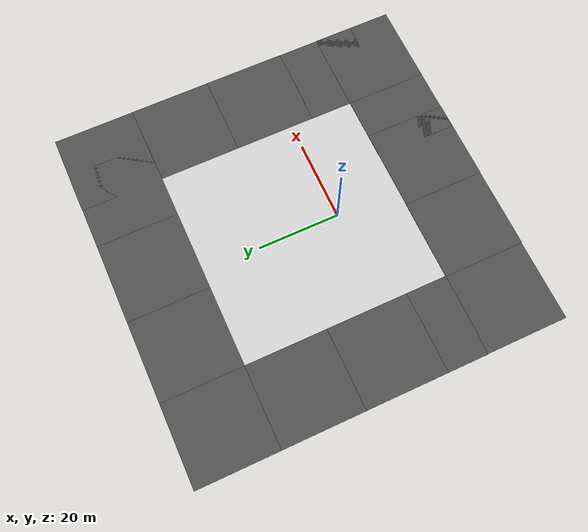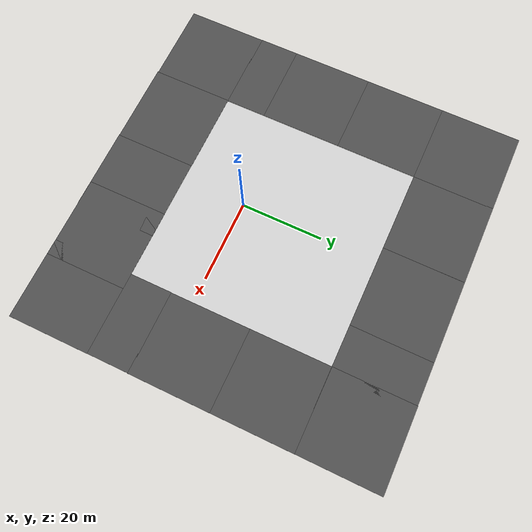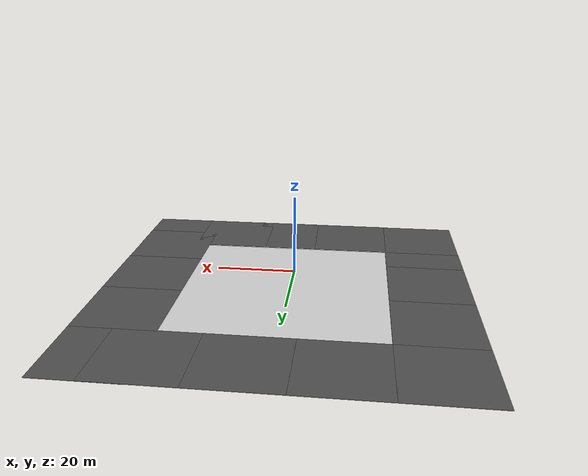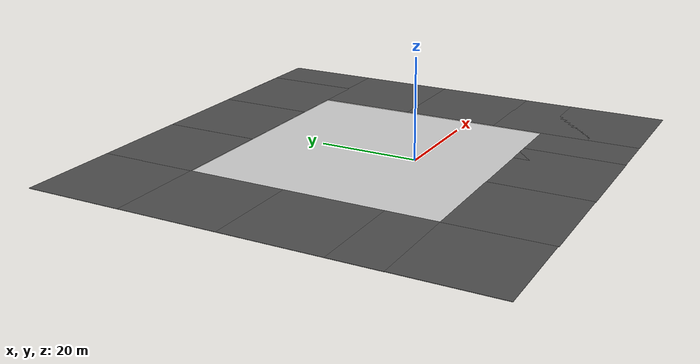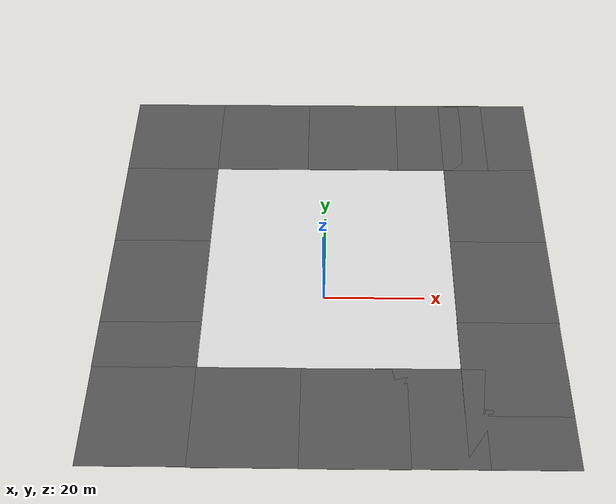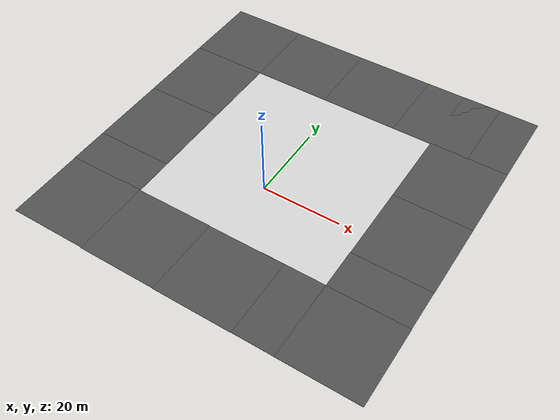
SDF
<sdf version="1.6">
 <world name="default">
  <light name="sun" type="directional">
   <pose>0 0 10 0 -0 0</pose>
   <diffuse>0.8 0.8 0.8 1</diffuse>
   <specular>0.1 0.1 0.1 1</specular>
   <attenuation>
    <range>1000</range>
    <constant>0.9</constant>
    <linear>0.01</linear>
    <quadratic>0.001</quadratic>
   </attenuation>
   <direction>-0.5 0.5 -1</direction>
  </light>
  <gravity>0 0 -9.8</gravity>
  <magnetic_field>6e-06 2.3e-05 -4.2e-05</magnetic_field>
  <atmosphere type="adiabatic"/>
  <physics name="default_physics" default="0" type="ode">
   <max_step_size>0.001</max_step_size>
   <real_time_factor>1</real_time_factor>
   <real_time_update_rate>1000</real_time_update_rate>
  </physics>
  <scene><ambient>0.4 0.4 0.4 1</ambient><background>0.7 0.7 0.7 1</background><shadows>1</shadows></scene>
  <spherical_coordinates>
   <surface_model>EARTH_WGS84</surface_model>
   <latitude_deg>0</latitude_deg>
   <longitude_deg>0</longitude_deg>
   <elevation>0</elevation>
   <heading_deg>0</heading_deg>
  </spherical_coordinates>
  <model name="my_ground_plane">
   <static>1</static>
   <link name="link">
    <collision name="collision">
     <geometry><plane><normal>0 0 1</normal><size>50 50</size></plane></geometry>
     <surface><friction><ode><mu>100</mu><mu2>50</mu2></ode></friction></surface>
    </collision>
    <visual name="visual">
     <cast_shadows>0</cast_shadows>
     <geometry><plane><normal>0 0 1</normal><size>50 50</size></plane></geometry>
     <material>
      <script>
       <uri>model://my_ground_plane/materials/scripts</uri>
       <uri>model://my_ground_plane/materials/textures/</uri>
       <name>MyGroundPlane/Image</name>
      </script>
     </material>
    </visual>
   </link>
   <pose>1.10135 9.06245 0 0 -0 0</pose>
  </model>
  <model name="asphalt_plane">
   <static>1</static>
   <link name="link">
    <collision name="collision"><geometry><box><size>20 20 0.1</size></box></geometry></collision>
    <visual name="visual">
     <cast_shadows>0</cast_shadows>
     <geometry><box><size>20 20 0.1</size></box></geometry>
     <material>
      <script>
       <uri>model://asphalt_plane/materials/scripts</uri>
       <uri>model://asphalt_plane/materials/textures</uri>
       <name>vrc/asphalt</name>
      </script>
     </material>
    </visual>
   </link>
   <pose>-33.9118 24.07 0 0 -0 0</pose>
  </model>
  <model name="asphalt_plane_0">
   <static>1</static>
   <link name="link">
    <collision name="collision"><geometry><box><size>20 20 0.1</size></box></geometry></collision>
    <visual name="visual">
     <cast_shadows>0</cast_shadows>
     <geometry><box><size>20 20 0.1</size></box></geometry>
     <material>
      <script>
       <uri>model://asphalt_plane/materials/scripts</uri>
       <uri>model://asphalt_plane/materials/textures</uri>
       <name>vrc/asphalt</name>
      </script>
     </material>
    </visual>
   </link>
   <pose>-33.9046 4.09898 0 0 -0 0</pose>
  </model>
  <model name="asphalt_plane_1_0">
   <link name="link">
    <pose>-0.001495 5.04324 0 0 -0 0</pose>
    <inertial>
     <inertia><ixx>nan</ixx><ixy>0</ixy><ixz>0</ixz><iyy>nan</iyy><iyz>0</iyz><izz>nan</izz></inertia>
     <mass>0</mass>
    </inertial>
    <visual name="visual">
     <cast_shadows>0</cast_shadows>
     <geometry><box><size>20 10.0921 0.1</size></box></geometry>
     <material>
      <script>
       <uri>model://asphalt_plane/materials/scripts</uri>
       <uri>model://asphalt_plane/materials/textures</uri>
       <name>vrc/asphalt</name>
      </script>
      <ambient>0.5 0.5 0.5 1</ambient>
      <diffuse>0.5 0.5 0.5 1</diffuse>
      <specular>0.2 0.2 0.2 1</specular>
      <emissive>0 0 0 1</emissive>
     </material>
    </visual>
    <collision name="collision">
     <geometry><box><size>20 10.0921 0.1</size></box></geometry>
     <surface>
      <friction>
       <ode><mu>1</mu><mu2>1</mu2><fdir1>0 0 0</fdir1><slip1>0</slip1><slip2>0</slip2></ode>
       <torsional>
        <coefficient>1</coefficient>
        <patch_radius>0</patch_radius>
        <surface_radius>0</surface_radius>
        <use_patch_radius>1</use_patch_radius>
        <ode><slip>0</slip></ode>
       </torsional>
      </friction>
      <bounce><restitution_coefficient>0</restitution_coefficient><threshold>1e+06</threshold></bounce>
      <contact>
       <collide_without_contact>0</collide_without_contact>
       <collide_without_contact_bitmask>1</collide_without_contact_bitmask>
       <collide_bitmask>1</collide_bitmask>
       <ode>
        <soft_cfm>0</soft_cfm>
        <soft_erp>0.2</soft_erp>
        <kp>1e+13</kp>
        <kd>1</kd>
        <max_vel>0.01</max_vel>
        <min_depth>0</min_depth>
       </ode>
       <bullet>
        <split_impulse>1</split_impulse>
        <split_impulse_penetration_threshold>-0.01</split_impulse_penetration_threshold>
        <soft_cfm>0</soft_cfm>
        <soft_erp>0.2</soft_erp>
        <kp>1e+13</kp>
        <kd>1</kd>
       </bullet>
      </contact>
     </surface>
    </collision>
   </link>
   <static>1</static>
   <pose>-33.9038 -15.9011 0 0 -0 0</pose>
  </model>
  <model name="asphalt_plane_2">
   <static>1</static>
   <link name="link">
    <collision name="collision"><geometry><box><size>20 20 0.1</size></box></geometry></collision>
    <visual name="visual">
     <cast_shadows>0</cast_shadows>
     <geometry><box><size>20 20 0.1</size></box></geometry>
     <material>
      <script>
       <uri>model://asphalt_plane/materials/scripts</uri>
       <uri>model://asphalt_plane/materials/textures</uri>
       <name>vrc/asphalt</name>
      </script>
     </material>
    </visual>
   </link>
   <pose>-33.9312 43.9944 0 0 -0 0</pose>
  </model>
  <model name="asphalt_plane_3">
   <static>1</static>
   <link name="link">
    <collision name="collision"><geometry><box><size>20 20 0.1</size></box></geometry></collision>
    <visual name="visual">
     <cast_shadows>0</cast_shadows>
     <geometry><box><size>20 20 0.1</size></box></geometry>
     <material>
      <script>
       <uri>model://asphalt_plane/materials/scripts</uri>
       <uri>model://asphalt_plane/materials/textures</uri>
       <name>vrc/asphalt</name>
      </script>
     </material>
    </visual>
   </link>
   <pose>-14.0248 43.9922 0 0 -0 0</pose>
  </model>
  <model name="asphalt_plane_4">
   <static>1</static>
   <link name="link">
    <collision name="collision"><geometry><box><size>20 20 0.1</size></box></geometry></collision>
    <visual name="visual">
     <cast_shadows>0</cast_shadows>
     <geometry><box><size>20 20 0.1</size></box></geometry>
     <material>
      <script>
       <uri>model://asphalt_plane/materials/scripts</uri>
       <uri>model://asphalt_plane/materials/textures</uri>
       <name>vrc/asphalt</name>
      </script>
     </material>
    </visual>
   </link>
   <pose>5.97935 43.993 0 0 -0 0</pose>
  </model>
  <model name="asphalt_plane_5">
   <static>1</static>
   <link name="link">
    <collision name="collision"><geometry><box><size>20 20 0.1</size></box></geometry></collision>
    <visual name="visual">
     <cast_shadows>0</cast_shadows>
     <geometry><box><size>20 20 0.1</size></box></geometry>
     <material>
      <script>
       <uri>model://asphalt_plane/materials/scripts</uri>
       <uri>model://asphalt_plane/materials/textures</uri>
       <name>vrc/asphalt</name>
      </script>
     </material>
    </visual>
   </link>
   <pose>25.9479 44.0042 0 0 -0 0</pose>
  </model>
  <model name="asphalt_plane_6">
   <static>1</static>
   <link name="link">
    <collision name="collision"><geometry><box><size>20 20 0.1</size></box></geometry></collision>
    <visual name="visual">
     <cast_shadows>0</cast_shadows>
     <geometry><box><size>20 20 0.1</size></box></geometry>
     <material>
      <script>
       <uri>model://asphalt_plane/materials/scripts</uri>
       <uri>model://asphalt_plane/materials/textures</uri>
       <name>vrc/asphalt</name>
      </script>
     </material>
    </visual>
   </link>
   <pose>36.0986 24.2266 0 0 -0 0</pose>
  </model>
  <model name="asphalt_plane_7">
   <static>1</static>
   <link name="link">
    <collision name="collision"><geometry><box><size>20 20 0.1</size></box></geometry></collision>
    <visual name="visual">
     <cast_shadows>0</cast_shadows>
     <geometry><box><size>20 20 0.1</size></box></geometry>
     <material>
      <script>
       <uri>model://asphalt_plane/materials/scripts</uri>
       <uri>model://asphalt_plane/materials/textures</uri>
       <name>vrc/asphalt</name>
      </script>
     </material>
    </visual>
   </link>
   <pose>36.0736 44.0741 0 0 -0 0</pose>
  </model>
  <model name="asphalt_plane_8">
   <static>1</static>
   <link name="link">
    <collision name="collision"><geometry><box><size>20 20 0.1</size></box></geometry></collision>
    <visual name="visual">
     <cast_shadows>0</cast_shadows>
     <geometry><box><size>20 20 0.1</size></box></geometry>
     <material>
      <script>
       <uri>model://asphalt_plane/materials/scripts</uri>
       <uri>model://asphalt_plane/materials/textures</uri>
       <name>vrc/asphalt</name>
      </script>
     </material>
    </visual>
   </link>
   <pose>36.1024 4.24043 0 0 -0 0</pose>
  </model>
  <model name="asphalt_plane_9">
   <static>1</static>
   <link name="link">
    <collision name="collision"><geometry><box><size>20 20 0.1</size></box></geometry></collision>
    <visual name="visual">
     <cast_shadows>0</cast_shadows>
     <geometry><box><size>20 20 0.1</size></box></geometry>
     <material>
      <script>
       <uri>model://asphalt_plane/materials/scripts</uri>
       <uri>model://asphalt_plane/materials/textures</uri>
       <name>vrc/asphalt</name>
      </script>
     </material>
    </visual>
   </link>
   <pose>-14.02 -25.868 0 0 -0 0</pose>
  </model>
  <model name="asphalt_plane_10">
   <static>1</static>
   <link name="link">
    <collision name="collision"><geometry><box><size>20 20 0.1</size></box></geometry></collision>
    <visual name="visual">
     <cast_shadows>0</cast_shadows>
     <geometry><box><size>20 20 0.1</size></box></geometry>
     <material>
      <script>
       <uri>model://asphalt_plane/materials/scripts</uri>
       <uri>model://asphalt_plane/materials/textures</uri>
       <name>vrc/asphalt</name>
      </script>
     </material>
    </visual>
   </link>
   <pose>-33.8458 -25.7194 0 0 -0 0</pose>
  </model>
  <model name="asphalt_plane_11">
   <static>1</static>
   <link name="link">
    <collision name="collision"><geometry><box><size>20 20 0.1</size></box></geometry></collision>
    <visual name="visual">
     <cast_shadows>0</cast_shadows>
     <geometry><box><size>20 20 0.1</size></box></geometry>
     <material>
      <script>
       <uri>model://asphalt_plane/materials/scripts</uri>
       <uri>model://asphalt_plane/materials/textures</uri>
       <name>vrc/asphalt</name>
      </script>
     </material>
    </visual>
   </link>
   <pose>5.83483 -25.9416 0 0 -0 0</pose>
  </model>
  <model name="asphalt_plane_12">
   <static>1</static>
   <link name="link">
    <collision name="collision"><geometry><box><size>20 20 0.1</size></box></geometry></collision>
    <visual name="visual">
     <cast_shadows>0</cast_shadows>
     <geometry><box><size>20 20 0.1</size></box></geometry>
     <material>
      <script>
       <uri>model://asphalt_plane/materials/scripts</uri>
       <uri>model://asphalt_plane/materials/textures</uri>
       <name>vrc/asphalt</name>
      </script>
     </material>
    </visual>
   </link>
   <pose>36.0946 -25.9015 0 0 -0 0</pose>
  </model>
  <model name="asphalt_plane_13">
   <static>1</static>
   <link name="link">
    <collision name="collision"><geometry><box><size>20 20 0.1</size></box></geometry></collision>
    <visual name="visual">
     <cast_shadows>0</cast_shadows>
     <geometry><box><size>20 20 0.1</size></box></geometry>
     <material>
      <script>
       <uri>model://asphalt_plane/materials/scripts</uri>
       <uri>model://asphalt_plane/materials/textures</uri>
       <name>vrc/asphalt</name>
      </script>
     </material>
    </visual>
   </link>
   <pose>36.0455 -15.5516 0 0 -0 0</pose>
  </model>
  <model name="asphalt_plane_14">
   <static>1</static>
   <link name="link">
    <collision name="collision"><geometry><box><size>20 20 0.1</size></box></geometry></collision>
    <visual name="visual">
     <cast_shadows>0</cast_shadows>
     <geometry><box><size>20 20 0.1</size></box></geometry>
     <material>
      <script>
       <uri>model://asphalt_plane/materials/scripts</uri>
       <uri>model://asphalt_plane/materials/textures</uri>
       <name>vrc/asphalt</name>
      </script>
     </material>
    </visual>
   </link>
   <pose>19.8446 -25.8803 0 0 -0 0</pose>
  </model>
 </world>
</sdf>
